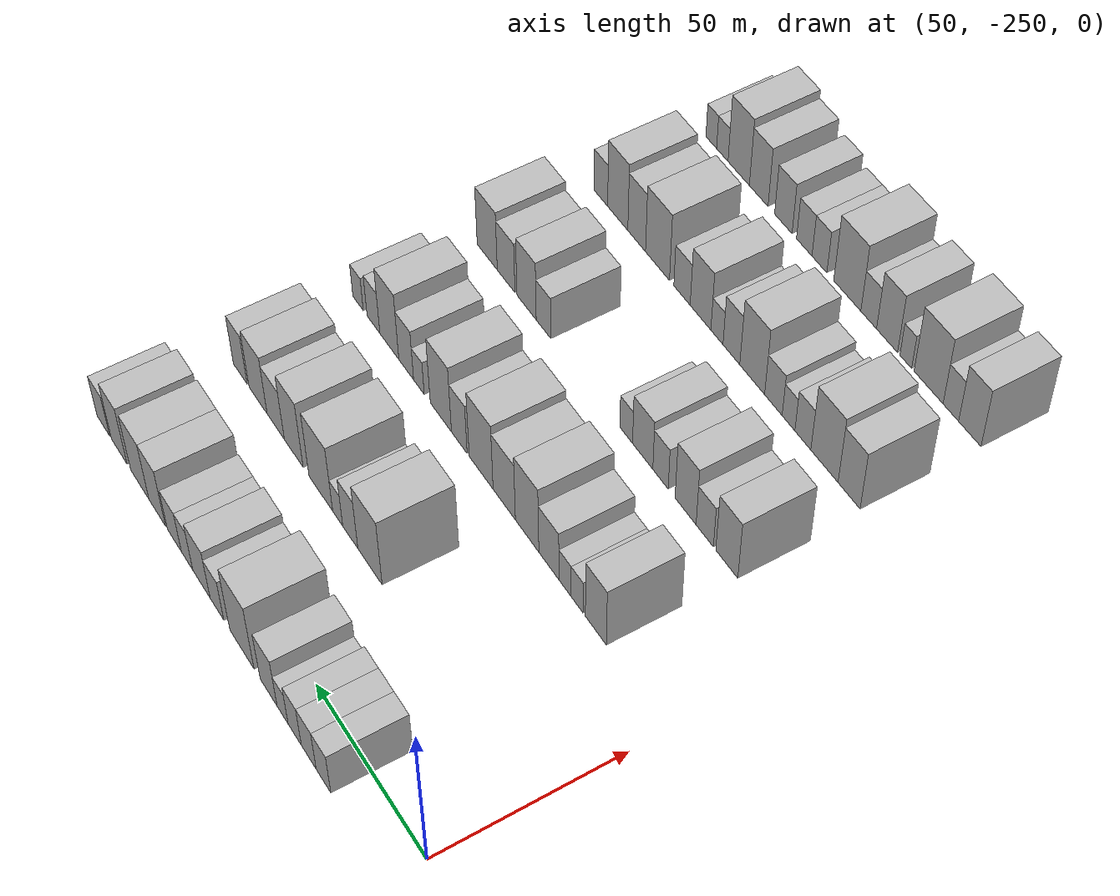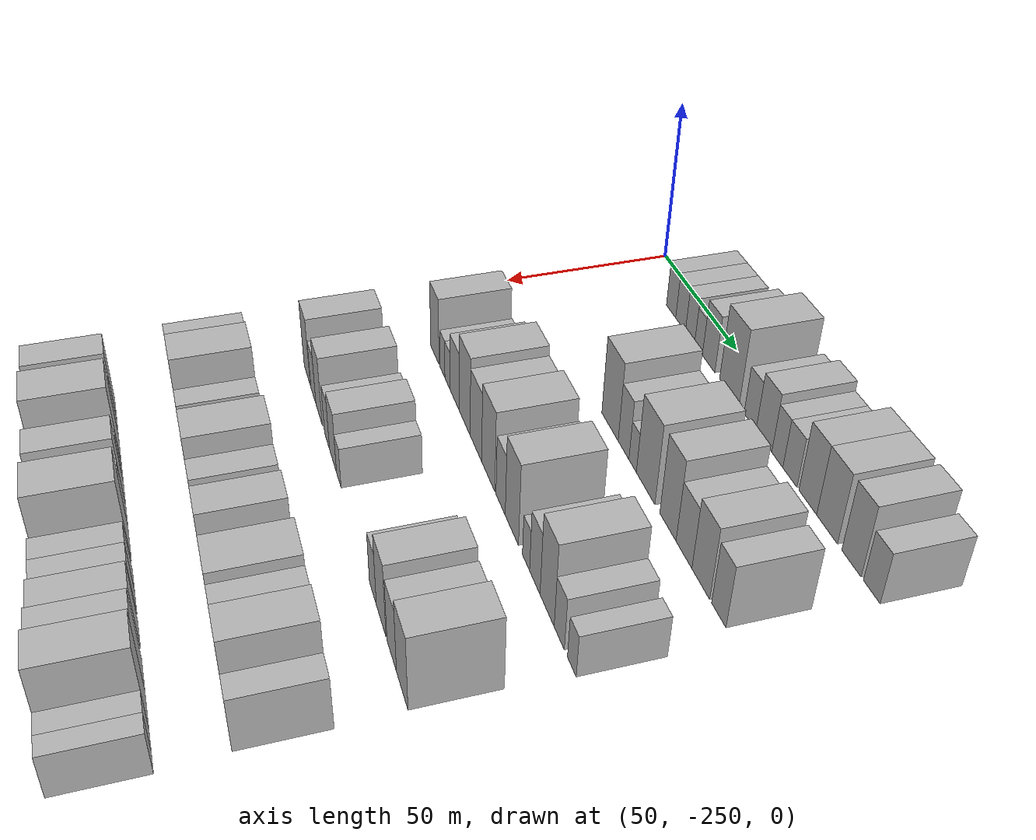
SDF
<sdf version="1.6">
 <world name="default">
  <model name="building_37">
   <static>1</static>
   <pose>50.0000 -222.2057 0 0.000000 0.000000 0.000000</pose>
   <link name="link">
    <pose>0 0 7.50 0 0 0</pose>
    <collision name="collision"><geometry><box><size>20.0000 6.7397 15.0000</size></box></geometry></collision>
    <visual name="visual">
     <cast_shadows>0</cast_shadows>
     <geometry><box><size>20.0000 6.7397 15.0000</size></box></geometry>
     <material>
      <script>
       <uri>model://HANNAS_wall/materials/scripts</uri>
       <uri>model://HANNAS_wall/materials/textures</uri>
       <name>vrc/HANNAS_wall</name>
      </script>
     </material>
    </visual>
   </link>
  </model>
  <model name="building_38">
   <static>1</static>
   <pose>50.0000 -215.3865 0 0.000000 0.000000 0.000000</pose>
   <link name="link">
    <pose>0 0 7.50 0 0 0</pose>
    <collision name="collision"><geometry><box><size>20.0000 6.8987 15.0000</size></box></geometry></collision>
    <visual name="visual">
     <cast_shadows>0</cast_shadows>
     <geometry><box><size>20.0000 6.8987 15.0000</size></box></geometry>
     <material>
      <script>
       <uri>model://HANNAS_wall/materials/scripts</uri>
       <uri>model://HANNAS_wall/materials/textures</uri>
       <name>vrc/HANNAS_wall</name>
      </script>
     </material>
    </visual>
   </link>
  </model>
  <model name="building_39">
   <static>1</static>
   <pose>50.0000 -208.8078 0 0.000000 0.000000 0.000000</pose>
   <link name="link">
    <pose>0 0 7.50 0 0 0</pose>
    <collision name="collision"><geometry><box><size>20.0000 6.2588 15.0000</size></box></geometry></collision>
    <visual name="visual">
     <cast_shadows>0</cast_shadows>
     <geometry><box><size>20.0000 6.2588 15.0000</size></box></geometry>
     <material>
      <script>
       <uri>model://HANNAS_wall/materials/scripts</uri>
       <uri>model://HANNAS_wall/materials/textures</uri>
       <name>vrc/HANNAS_wall</name>
      </script>
     </material>
    </visual>
   </link>
  </model>
  <model name="building_40">
   <static>1</static>
   <pose>50.0000 -203.0343 0 0.000000 0.000000 0.000000</pose>
   <link name="link">
    <pose>0 0 6.00 0 0 0</pose>
    <collision name="collision"><geometry><box><size>20.0000 5.2880 12.0000</size></box></geometry></collision>
    <visual name="visual">
     <cast_shadows>0</cast_shadows>
     <geometry><box><size>20.0000 5.2880 12.0000</size></box></geometry>
     <material>
      <script>
       <uri>model://HANNAS_wall/materials/scripts</uri>
       <uri>model://HANNAS_wall/materials/textures</uri>
       <name>vrc/HANNAS_wall</name>
      </script>
     </material>
    </visual>
   </link>
  </model>
  <model name="building_41">
   <static>1</static>
   <pose>50.0000 -196.2881 0 0.000000 0.000000 0.000000</pose>
   <link name="link">
    <pose>0 0 9.00 0 0 0</pose>
    <collision name="collision"><geometry><box><size>20.0000 8.2043 18.0000</size></box></geometry></collision>
    <visual name="visual">
     <cast_shadows>0</cast_shadows>
     <geometry><box><size>20.0000 8.2043 18.0000</size></box></geometry>
     <material>
      <script>
       <uri>model://HANNAS_wall/materials/scripts</uri>
       <uri>model://HANNAS_wall/materials/textures</uri>
       <name>vrc/HANNAS_wall</name>
      </script>
     </material>
    </visual>
   </link>
  </model>
  <model name="building_42">
   <static>1</static>
   <pose>50.0000 -183.1892 0 0.000000 0.000000 0.000000</pose>
   <link name="link">
    <pose>0 0 12.00 0 0 0</pose>
    <collision name="collision"><geometry><box><size>20.0000 11.9935 24.0000</size></box></geometry></collision>
    <visual name="visual">
     <cast_shadows>0</cast_shadows>
     <geometry><box><size>20.0000 11.9935 24.0000</size></box></geometry>
     <material>
      <script>
       <uri>model://HANNAS_wall/materials/scripts</uri>
       <uri>model://HANNAS_wall/materials/textures</uri>
       <name>vrc/HANNAS_wall</name>
      </script>
     </material>
    </visual>
   </link>
  </model>
  <model name="building_43">
   <static>1</static>
   <pose>50.0000 -170.7043 0 0.000000 0.000000 0.000000</pose>
   <link name="link">
    <pose>0 0 7.50 0 0 0</pose>
    <collision name="collision"><geometry><box><size>20.0000 6.9764 15.0000</size></box></geometry></collision>
    <visual name="visual">
     <cast_shadows>0</cast_shadows>
     <geometry><box><size>20.0000 6.9764 15.0000</size></box></geometry>
     <material>
      <script>
       <uri>model://HANNAS_wall/materials/scripts</uri>
       <uri>model://HANNAS_wall/materials/textures</uri>
       <name>vrc/HANNAS_wall</name>
      </script>
     </material>
    </visual>
   </link>
  </model>
  <model name="building_44">
   <static>1</static>
   <pose>50.0000 -162.7735 0 0.000000 0.000000 0.000000</pose>
   <link name="link">
    <pose>0 0 9.00 0 0 0</pose>
    <collision name="collision"><geometry><box><size>20.0000 8.8852 18.0000</size></box></geometry></collision>
    <visual name="visual">
     <cast_shadows>0</cast_shadows>
     <geometry><box><size>20.0000 8.8852 18.0000</size></box></geometry>
     <material>
      <script>
       <uri>model://HANNAS_wall/materials/scripts</uri>
       <uri>model://HANNAS_wall/materials/textures</uri>
       <name>vrc/HANNAS_wall</name>
      </script>
     </material>
    </visual>
   </link>
  </model>
  <model name="building_45">
   <static>1</static>
   <pose>50.0000 -155.3283 0 0.000000 0.000000 0.000000</pose>
   <link name="link">
    <pose>0 0 7.50 0 0 0</pose>
    <collision name="collision"><geometry><box><size>20.0000 6.0052 15.0000</size></box></geometry></collision>
    <visual name="visual">
     <cast_shadows>0</cast_shadows>
     <geometry><box><size>20.0000 6.0052 15.0000</size></box></geometry>
     <material>
      <script>
       <uri>model://HANNAS_wall/materials/scripts</uri>
       <uri>model://HANNAS_wall/materials/textures</uri>
       <name>vrc/HANNAS_wall</name>
      </script>
     </material>
    </visual>
   </link>
  </model>
  <model name="building_46">
   <static>1</static>
   <pose>50.0000 -148.6148 0 0.000000 0.000000 0.000000</pose>
   <link name="link">
    <pose>0 0 7.50 0 0 0</pose>
    <collision name="collision"><geometry><box><size>20.0000 7.4218 15.0000</size></box></geometry></collision>
    <visual name="visual">
     <cast_shadows>0</cast_shadows>
     <geometry><box><size>20.0000 7.4218 15.0000</size></box></geometry>
     <material>
      <script>
       <uri>model://HANNAS_wall/materials/scripts</uri>
       <uri>model://HANNAS_wall/materials/textures</uri>
       <name>vrc/HANNAS_wall</name>
      </script>
     </material>
    </visual>
   </link>
  </model>
  <model name="building_47">
   <static>1</static>
   <pose>50.0000 -139.4561 0 0.000000 0.000000 0.000000</pose>
   <link name="link">
    <pose>0 0 10.50 0 0 0</pose>
    <collision name="collision"><geometry><box><size>20.0000 8.8955 21.0000</size></box></geometry></collision>
    <visual name="visual">
     <cast_shadows>0</cast_shadows>
     <geometry><box><size>20.0000 8.8955 21.0000</size></box></geometry>
     <material>
      <script>
       <uri>model://HANNAS_wall/materials/scripts</uri>
       <uri>model://HANNAS_wall/materials/textures</uri>
       <name>vrc/HANNAS_wall</name>
      </script>
     </material>
    </visual>
   </link>
  </model>
  <model name="building_48">
   <static>1</static>
   <pose>50.0000 -130.0161 0 0.000000 0.000000 0.000000</pose>
   <link name="link">
    <pose>0 0 10.50 0 0 0</pose>
    <collision name="collision"><geometry><box><size>20.0000 9.9846 21.0000</size></box></geometry></collision>
    <visual name="visual">
     <cast_shadows>0</cast_shadows>
     <geometry><box><size>20.0000 9.9846 21.0000</size></box></geometry>
     <material>
      <script>
       <uri>model://HANNAS_wall/materials/scripts</uri>
       <uri>model://HANNAS_wall/materials/textures</uri>
       <name>vrc/HANNAS_wall</name>
      </script>
     </material>
    </visual>
   </link>
  </model>
  <model name="building_49">
   <static>1</static>
   <pose>50.0000 -118.6606 0 0.000000 0.000000 0.000000</pose>
   <link name="link">
    <pose>0 0 10.50 0 0 0</pose>
    <collision name="collision"><geometry><box><size>20.0000 8.7264 21.0000</size></box></geometry></collision>
    <visual name="visual">
     <cast_shadows>0</cast_shadows>
     <geometry><box><size>20.0000 8.7264 21.0000</size></box></geometry>
     <material>
      <script>
       <uri>model://HANNAS_wall/materials/scripts</uri>
       <uri>model://HANNAS_wall/materials/textures</uri>
       <name>vrc/HANNAS_wall</name>
      </script>
     </material>
    </visual>
   </link>
  </model>
  <model name="building_50">
   <static>1</static>
   <pose>50.0000 -109.6821 0 0.000000 0.000000 0.000000</pose>
   <link name="link">
    <pose>0 0 7.50 0 0 0</pose>
    <collision name="collision"><geometry><box><size>20.0000 7.2307 15.0000</size></box></geometry></collision>
    <visual name="visual">
     <cast_shadows>0</cast_shadows>
     <geometry><box><size>20.0000 7.2307 15.0000</size></box></geometry>
     <material>
      <script>
       <uri>model://HANNAS_wall/materials/scripts</uri>
       <uri>model://HANNAS_wall/materials/textures</uri>
       <name>vrc/HANNAS_wall</name>
      </script>
     </material>
    </visual>
   </link>
  </model>
  <model name="building_161">
   <static>1</static>
   <pose>85.0000 -178.3140 0 0.000000 0.000000 0.000000</pose>
   <link name="link">
    <pose>0 0 12.00 0 0 0</pose>
    <collision name="collision"><geometry><box><size>20.0000 11.6469 24.0000</size></box></geometry></collision>
    <visual name="visual">
     <cast_shadows>0</cast_shadows>
     <geometry><box><size>20.0000 11.6469 24.0000</size></box></geometry>
     <material>
      <script>
       <uri>model://HANNAS_wall/materials/scripts</uri>
       <uri>model://HANNAS_wall/materials/textures</uri>
       <name>vrc/HANNAS_wall</name>
      </script>
     </material>
    </visual>
   </link>
  </model>
  <model name="building_162">
   <static>1</static>
   <pose>85.0000 -168.8103 0 0.000000 0.000000 0.000000</pose>
   <link name="link">
    <pose>0 0 9.00 0 0 0</pose>
    <collision name="collision"><geometry><box><size>20.0000 7.3607 18.0000</size></box></geometry></collision>
    <visual name="visual">
     <cast_shadows>0</cast_shadows>
     <geometry><box><size>20.0000 7.3607 18.0000</size></box></geometry>
     <material>
      <script>
       <uri>model://HANNAS_wall/materials/scripts</uri>
       <uri>model://HANNAS_wall/materials/textures</uri>
       <name>vrc/HANNAS_wall</name>
      </script>
     </material>
    </visual>
   </link>
  </model>
  <model name="building_163">
   <static>1</static>
   <pose>85.0000 -162.6488 0 0.000000 0.000000 0.000000</pose>
   <link name="link">
    <pose>0 0 6.00 0 0 0</pose>
    <collision name="collision"><geometry><box><size>20.0000 4.9623 12.0000</size></box></geometry></collision>
    <visual name="visual">
     <cast_shadows>0</cast_shadows>
     <geometry><box><size>20.0000 4.9623 12.0000</size></box></geometry>
     <material>
      <script>
       <uri>model://HANNAS_wall/materials/scripts</uri>
       <uri>model://HANNAS_wall/materials/textures</uri>
       <name>vrc/HANNAS_wall</name>
      </script>
     </material>
    </visual>
   </link>
  </model>
  <model name="building_164">
   <static>1</static>
   <pose>85.0000 -154.2347 0 0.000000 0.000000 0.000000</pose>
   <link name="link">
    <pose>0 0 12.00 0 0 0</pose>
    <collision name="collision"><geometry><box><size>20.0000 11.8658 24.0000</size></box></geometry></collision>
    <visual name="visual">
     <cast_shadows>0</cast_shadows>
     <geometry><box><size>20.0000 11.8658 24.0000</size></box></geometry>
     <material>
      <script>
       <uri>model://HANNAS_wall/materials/scripts</uri>
       <uri>model://HANNAS_wall/materials/textures</uri>
       <name>vrc/HANNAS_wall</name>
      </script>
     </material>
    </visual>
   </link>
  </model>
  <model name="building_165">
   <static>1</static>
   <pose>85.0000 -140.4770 0 0.000000 0.000000 0.000000</pose>
   <link name="link">
    <pose>0 0 12.00 0 0 0</pose>
    <collision name="collision"><geometry><box><size>20.0000 9.6497 24.0000</size></box></geometry></collision>
    <visual name="visual">
     <cast_shadows>0</cast_shadows>
     <geometry><box><size>20.0000 9.6497 24.0000</size></box></geometry>
     <material>
      <script>
       <uri>model://HANNAS_wall/materials/scripts</uri>
       <uri>model://HANNAS_wall/materials/textures</uri>
       <name>vrc/HANNAS_wall</name>
      </script>
     </material>
    </visual>
   </link>
  </model>
  <model name="building_166">
   <static>1</static>
   <pose>85.0000 -131.1548 0 0.000000 0.000000 0.000000</pose>
   <link name="link">
    <pose>0 0 9.00 0 0 0</pose>
    <collision name="collision"><geometry><box><size>20.0000 8.9945 18.0000</size></box></geometry></collision>
    <visual name="visual">
     <cast_shadows>0</cast_shadows>
     <geometry><box><size>20.0000 8.9945 18.0000</size></box></geometry>
     <material>
      <script>
       <uri>model://HANNAS_wall/materials/scripts</uri>
       <uri>model://HANNAS_wall/materials/textures</uri>
       <name>vrc/HANNAS_wall</name>
      </script>
     </material>
    </visual>
   </link>
  </model>
  <model name="building_167">
   <static>1</static>
   <pose>85.0000 -121.8473 0 0.000000 0.000000 0.000000</pose>
   <link name="link">
    <pose>0 0 10.50 0 0 0</pose>
    <collision name="collision"><geometry><box><size>20.0000 9.6205 21.0000</size></box></geometry></collision>
    <visual name="visual">
     <cast_shadows>0</cast_shadows>
     <geometry><box><size>20.0000 9.6205 21.0000</size></box></geometry>
     <material>
      <script>
       <uri>model://HANNAS_wall/materials/scripts</uri>
       <uri>model://HANNAS_wall/materials/textures</uri>
       <name>vrc/HANNAS_wall</name>
      </script>
     </material>
    </visual>
   </link>
  </model>
  <model name="building_168">
   <static>1</static>
   <pose>85.0000 -112.3447 0 0.000000 0.000000 0.000000</pose>
   <link name="link">
    <pose>0 0 9.00 0 0 0</pose>
    <collision name="collision"><geometry><box><size>20.0000 7.3847 18.0000</size></box></geometry></collision>
    <visual name="visual">
     <cast_shadows>0</cast_shadows>
     <geometry><box><size>20.0000 7.3847 18.0000</size></box></geometry>
     <material>
      <script>
       <uri>model://HANNAS_wall/materials/scripts</uri>
       <uri>model://HANNAS_wall/materials/textures</uri>
       <name>vrc/HANNAS_wall</name>
      </script>
     </material>
    </visual>
   </link>
  </model>
  <model name="building_282">
   <static>1</static>
   <pose>120.0000 -219.7850 0 0.000000 0.000000 0.000000</pose>
   <link name="link">
    <pose>0 0 10.50 0 0 0</pose>
    <collision name="collision"><geometry><box><size>20.0000 8.9713 21.0000</size></box></geometry></collision>
    <visual name="visual">
     <cast_shadows>0</cast_shadows>
     <geometry><box><size>20.0000 8.9713 21.0000</size></box></geometry>
     <material>
      <script>
       <uri>model://HANNAS_wall/materials/scripts</uri>
       <uri>model://HANNAS_wall/materials/textures</uri>
       <name>vrc/HANNAS_wall</name>
      </script>
     </material>
    </visual>
   </link>
  </model>
  <model name="building_283">
   <static>1</static>
   <pose>120.0000 -211.7046 0 0.000000 0.000000 0.000000</pose>
   <link name="link">
    <pose>0 0 6.00 0 0 0</pose>
    <collision name="collision"><geometry><box><size>20.0000 5.1895 12.0000</size></box></geometry></collision>
    <visual name="visual">
     <cast_shadows>0</cast_shadows>
     <geometry><box><size>20.0000 5.1895 12.0000</size></box></geometry>
     <material>
      <script>
       <uri>model://HANNAS_wall/materials/scripts</uri>
       <uri>model://HANNAS_wall/materials/textures</uri>
       <name>vrc/HANNAS_wall</name>
      </script>
     </material>
    </visual>
   </link>
  </model>
  <model name="building_284">
   <static>1</static>
   <pose>120.0000 -206.4529 0 0.000000 0.000000 0.000000</pose>
   <link name="link">
    <pose>0 0 6.00 0 0 0</pose>
    <collision name="collision"><geometry><box><size>20.0000 5.3138 12.0000</size></box></geometry></collision>
    <visual name="visual">
     <cast_shadows>0</cast_shadows>
     <geometry><box><size>20.0000 5.3138 12.0000</size></box></geometry>
     <material>
      <script>
       <uri>model://HANNAS_wall/materials/scripts</uri>
       <uri>model://HANNAS_wall/materials/textures</uri>
       <name>vrc/HANNAS_wall</name>
      </script>
     </material>
    </visual>
   </link>
  </model>
  <model name="building_285">
   <static>1</static>
   <pose>120.0000 -199.3241 0 0.000000 0.000000 0.000000</pose>
   <link name="link">
    <pose>0 0 9.00 0 0 0</pose>
    <collision name="collision"><geometry><box><size>20.0000 8.9437 18.0000</size></box></geometry></collision>
    <visual name="visual">
     <cast_shadows>0</cast_shadows>
     <geometry><box><size>20.0000 8.9437 18.0000</size></box></geometry>
     <material>
      <script>
       <uri>model://HANNAS_wall/materials/scripts</uri>
       <uri>model://HANNAS_wall/materials/textures</uri>
       <name>vrc/HANNAS_wall</name>
      </script>
     </material>
    </visual>
   </link>
  </model>
  <model name="building_286">
   <static>1</static>
   <pose>120.0000 -189.5425 0 0.000000 0.000000 0.000000</pose>
   <link name="link">
    <pose>0 0 12.00 0 0 0</pose>
    <collision name="collision"><geometry><box><size>20.0000 10.6196 24.0000</size></box></geometry></collision>
    <visual name="visual">
     <cast_shadows>0</cast_shadows>
     <geometry><box><size>20.0000 10.6196 24.0000</size></box></geometry>
     <material>
      <script>
       <uri>model://HANNAS_wall/materials/scripts</uri>
       <uri>model://HANNAS_wall/materials/textures</uri>
       <name>vrc/HANNAS_wall</name>
      </script>
     </material>
    </visual>
   </link>
  </model>
  <model name="building_287">
   <static>1</static>
   <pose>120.0000 -179.0913 0 0.000000 0.000000 0.000000</pose>
   <link name="link">
    <pose>0 0 10.50 0 0 0</pose>
    <collision name="collision"><geometry><box><size>20.0000 10.2829 21.0000</size></box></geometry></collision>
    <visual name="visual">
     <cast_shadows>0</cast_shadows>
     <geometry><box><size>20.0000 10.2829 21.0000</size></box></geometry>
     <material>
      <script>
       <uri>model://HANNAS_wall/materials/scripts</uri>
       <uri>model://HANNAS_wall/materials/textures</uri>
       <name>vrc/HANNAS_wall</name>
      </script>
     </material>
    </visual>
   </link>
  </model>
  <model name="building_288">
   <static>1</static>
   <pose>120.0000 -168.3339 0 0.000000 0.000000 0.000000</pose>
   <link name="link">
    <pose>0 0 12.00 0 0 0</pose>
    <collision name="collision"><geometry><box><size>20.0000 11.2319 24.0000</size></box></geometry></collision>
    <visual name="visual">
     <cast_shadows>0</cast_shadows>
     <geometry><box><size>20.0000 11.2319 24.0000</size></box></geometry>
     <material>
      <script>
       <uri>model://HANNAS_wall/materials/scripts</uri>
       <uri>model://HANNAS_wall/materials/textures</uri>
       <name>vrc/HANNAS_wall</name>
      </script>
     </material>
    </visual>
   </link>
  </model>
  <model name="building_289">
   <static>1</static>
   <pose>120.0000 -157.9696 0 0.000000 0.000000 0.000000</pose>
   <link name="link">
    <pose>0 0 9.00 0 0 0</pose>
    <collision name="collision"><geometry><box><size>20.0000 7.4966 18.0000</size></box></geometry></collision>
    <visual name="visual">
     <cast_shadows>0</cast_shadows>
     <geometry><box><size>20.0000 7.4966 18.0000</size></box></geometry>
     <material>
      <script>
       <uri>model://HANNAS_wall/materials/scripts</uri>
       <uri>model://HANNAS_wall/materials/textures</uri>
       <name>vrc/HANNAS_wall</name>
      </script>
     </material>
    </visual>
   </link>
  </model>
  <model name="building_290">
   <static>1</static>
   <pose>120.0000 -149.0648 0 0.000000 0.000000 0.000000</pose>
   <link name="link">
    <pose>0 0 12.00 0 0 0</pose>
    <collision name="collision"><geometry><box><size>20.0000 10.3130 24.0000</size></box></geometry></collision>
    <visual name="visual">
     <cast_shadows>0</cast_shadows>
     <geometry><box><size>20.0000 10.3130 24.0000</size></box></geometry>
     <material>
      <script>
       <uri>model://HANNAS_wall/materials/scripts</uri>
       <uri>model://HANNAS_wall/materials/textures</uri>
       <name>vrc/HANNAS_wall</name>
      </script>
     </material>
    </visual>
   </link>
  </model>
  <model name="building_291">
   <static>1</static>
   <pose>120.0000 -138.2859 0 0.000000 0.000000 0.000000</pose>
   <link name="link">
    <pose>0 0 6.00 0 0 0</pose>
    <collision name="collision"><geometry><box><size>20.0000 5.2447 12.0000</size></box></geometry></collision>
    <visual name="visual">
     <cast_shadows>0</cast_shadows>
     <geometry><box><size>20.0000 5.2447 12.0000</size></box></geometry>
     <material>
      <script>
       <uri>model://HANNAS_wall/materials/scripts</uri>
       <uri>model://HANNAS_wall/materials/textures</uri>
       <name>vrc/HANNAS_wall</name>
      </script>
     </material>
    </visual>
   </link>
  </model>
  <model name="building_292">
   <static>1</static>
   <pose>120.0000 -131.9553 0 0.000000 0.000000 0.000000</pose>
   <link name="link">
    <pose>0 0 9.00 0 0 0</pose>
    <collision name="collision"><geometry><box><size>20.0000 7.4166 18.0000</size></box></geometry></collision>
    <visual name="visual">
     <cast_shadows>0</cast_shadows>
     <geometry><box><size>20.0000 7.4166 18.0000</size></box></geometry>
     <material>
      <script>
       <uri>model://HANNAS_wall/materials/scripts</uri>
       <uri>model://HANNAS_wall/materials/textures</uri>
       <name>vrc/HANNAS_wall</name>
      </script>
     </material>
    </visual>
   </link>
  </model>
  <model name="building_293">
   <static>1</static>
   <pose>120.0000 -123.4278 0 0.000000 0.000000 0.000000</pose>
   <link name="link">
    <pose>0 0 12.00 0 0 0</pose>
    <collision name="collision"><geometry><box><size>20.0000 9.6383 24.0000</size></box></geometry></collision>
    <visual name="visual">
     <cast_shadows>0</cast_shadows>
     <geometry><box><size>20.0000 9.6383 24.0000</size></box></geometry>
     <material>
      <script>
       <uri>model://HANNAS_wall/materials/scripts</uri>
       <uri>model://HANNAS_wall/materials/textures</uri>
       <name>vrc/HANNAS_wall</name>
      </script>
     </material>
    </visual>
   </link>
  </model>
  <model name="building_294">
   <static>1</static>
   <pose>120.0000 -115.3093 0 0.000000 0.000000 0.000000</pose>
   <link name="link">
    <pose>0 0 7.50 0 0 0</pose>
    <collision name="collision"><geometry><box><size>20.0000 6.5988 15.0000</size></box></geometry></collision>
    <visual name="visual">
     <cast_shadows>0</cast_shadows>
     <geometry><box><size>20.0000 6.5988 15.0000</size></box></geometry>
     <material>
      <script>
       <uri>model://HANNAS_wall/materials/scripts</uri>
       <uri>model://HANNAS_wall/materials/textures</uri>
       <name>vrc/HANNAS_wall</name>
      </script>
     </material>
    </visual>
   </link>
  </model>
  <model name="building_295">
   <static>1</static>
   <pose>120.0000 -107.3004 0 0.000000 0.000000 0.000000</pose>
   <link name="link">
    <pose>0 0 6.00 0 0 0</pose>
    <collision name="collision"><geometry><box><size>20.0000 5.4190 12.0000</size></box></geometry></collision>
    <visual name="visual">
     <cast_shadows>0</cast_shadows>
     <geometry><box><size>20.0000 5.4190 12.0000</size></box></geometry>
     <material>
      <script>
       <uri>model://HANNAS_wall/materials/scripts</uri>
       <uri>model://HANNAS_wall/materials/textures</uri>
       <name>vrc/HANNAS_wall</name>
      </script>
     </material>
    </visual>
   </link>
  </model>
  <model name="building_410">
   <static>1</static>
   <pose>155.0000 -219.9054 0 0.000000 0.000000 0.000000</pose>
   <link name="link">
    <pose>0 0 10.50 0 0 0</pose>
    <collision name="collision"><geometry><box><size>20.0000 9.1287 21.0000</size></box></geometry></collision>
    <visual name="visual">
     <cast_shadows>0</cast_shadows>
     <geometry><box><size>20.0000 9.1287 21.0000</size></box></geometry>
     <material>
      <script>
       <uri>model://HANNAS_wall/materials/scripts</uri>
       <uri>model://HANNAS_wall/materials/textures</uri>
       <name>vrc/HANNAS_wall</name>
      </script>
     </material>
    </visual>
   </link>
  </model>
  <model name="building_411">
   <static>1</static>
   <pose>155.0000 -210.6933 0 0.000000 0.000000 0.000000</pose>
   <link name="link">
    <pose>0 0 7.50 0 0 0</pose>
    <collision name="collision"><geometry><box><size>20.0000 7.2954 15.0000</size></box></geometry></collision>
    <visual name="visual">
     <cast_shadows>0</cast_shadows>
     <geometry><box><size>20.0000 7.2954 15.0000</size></box></geometry>
     <material>
      <script>
       <uri>model://HANNAS_wall/materials/scripts</uri>
       <uri>model://HANNAS_wall/materials/textures</uri>
       <name>vrc/HANNAS_wall</name>
      </script>
     </material>
    </visual>
   </link>
  </model>
  <model name="building_412">
   <static>1</static>
   <pose>155.0000 -202.5580 0 0.000000 0.000000 0.000000</pose>
   <link name="link">
    <pose>0 0 10.50 0 0 0</pose>
    <collision name="collision"><geometry><box><size>20.0000 8.9752 21.0000</size></box></geometry></collision>
    <visual name="visual">
     <cast_shadows>0</cast_shadows>
     <geometry><box><size>20.0000 8.9752 21.0000</size></box></geometry>
     <material>
      <script>
       <uri>model://HANNAS_wall/materials/scripts</uri>
       <uri>model://HANNAS_wall/materials/textures</uri>
       <name>vrc/HANNAS_wall</name>
      </script>
     </material>
    </visual>
   </link>
  </model>
  <model name="building_413">
   <static>1</static>
   <pose>155.0000 -191.7249 0 0.000000 0.000000 0.000000</pose>
   <link name="link">
    <pose>0 0 7.50 0 0 0</pose>
    <collision name="collision"><geometry><box><size>20.0000 6.6911 15.0000</size></box></geometry></collision>
    <visual name="visual">
     <cast_shadows>0</cast_shadows>
     <geometry><box><size>20.0000 6.6911 15.0000</size></box></geometry>
     <material>
      <script>
       <uri>model://HANNAS_wall/materials/scripts</uri>
       <uri>model://HANNAS_wall/materials/textures</uri>
       <name>vrc/HANNAS_wall</name>
      </script>
     </material>
    </visual>
   </link>
  </model>
  <model name="building_414">
   <static>1</static>
   <pose>155.0000 -183.8926 0 0.000000 0.000000 0.000000</pose>
   <link name="link">
    <pose>0 0 9.00 0 0 0</pose>
    <collision name="collision"><geometry><box><size>20.0000 8.9734 18.0000</size></box></geometry></collision>
    <visual name="visual">
     <cast_shadows>0</cast_shadows>
     <geometry><box><size>20.0000 8.9734 18.0000</size></box></geometry>
     <material>
      <script>
       <uri>model://HANNAS_wall/materials/scripts</uri>
       <uri>model://HANNAS_wall/materials/textures</uri>
       <name>vrc/HANNAS_wall</name>
      </script>
     </material>
    </visual>
   </link>
  </model>
  <model name="building_415">
   <static>1</static>
   <pose>155.0000 -176.5642 0 0.000000 0.000000 0.000000</pose>
   <link name="link">
    <pose>0 0 6.00 0 0 0</pose>
    <collision name="collision"><geometry><box><size>20.0000 5.6836 12.0000</size></box></geometry></collision>
    <visual name="visual">
     <cast_shadows>0</cast_shadows>
     <geometry><box><size>20.0000 5.6836 12.0000</size></box></geometry>
     <material>
      <script>
       <uri>model://HANNAS_wall/materials/scripts</uri>
       <uri>model://HANNAS_wall/materials/textures</uri>
       <name>vrc/HANNAS_wall</name>
      </script>
     </material>
    </visual>
   </link>
  </model>
  <model name="building_416">
   <static>1</static>
   <pose>155.0000 -138.2287 0 0.000000 0.000000 0.000000</pose>
   <link name="link">
    <pose>0 0 7.50 0 0 0</pose>
    <collision name="collision"><geometry><box><size>20.0000 6.9958 15.0000</size></box></geometry></collision>
    <visual name="visual">
     <cast_shadows>0</cast_shadows>
     <geometry><box><size>20.0000 6.9958 15.0000</size></box></geometry>
     <material>
      <script>
       <uri>model://HANNAS_wall/materials/scripts</uri>
       <uri>model://HANNAS_wall/materials/textures</uri>
       <name>vrc/HANNAS_wall</name>
      </script>
     </material>
    </visual>
   </link>
  </model>
  <model name="building_417">
   <static>1</static>
   <pose>155.0000 -130.0540 0 0.000000 0.000000 0.000000</pose>
   <link name="link">
    <pose>0 0 10.50 0 0 0</pose>
    <collision name="collision"><geometry><box><size>20.0000 9.3537 21.0000</size></box></geometry></collision>
    <visual name="visual">
     <cast_shadows>0</cast_shadows>
     <geometry><box><size>20.0000 9.3537 21.0000</size></box></geometry>
     <material>
      <script>
       <uri>model://HANNAS_wall/materials/scripts</uri>
       <uri>model://HANNAS_wall/materials/textures</uri>
       <name>vrc/HANNAS_wall</name>
      </script>
     </material>
    </visual>
   </link>
  </model>
  <model name="building_418">
   <static>1</static>
   <pose>155.0000 -120.0063 0 0.000000 0.000000 0.000000</pose>
   <link name="link">
    <pose>0 0 9.00 0 0 0</pose>
    <collision name="collision"><geometry><box><size>20.0000 8.7416 18.0000</size></box></geometry></collision>
    <visual name="visual">
     <cast_shadows>0</cast_shadows>
     <geometry><box><size>20.0000 8.7416 18.0000</size></box></geometry>
     <material>
      <script>
       <uri>model://HANNAS_wall/materials/scripts</uri>
       <uri>model://HANNAS_wall/materials/textures</uri>
       <name>vrc/HANNAS_wall</name>
      </script>
     </material>
    </visual>
   </link>
  </model>
  <model name="building_419">
   <static>1</static>
   <pose>155.0000 -110.5997 0 0.000000 0.000000 0.000000</pose>
   <link name="link">
    <pose>0 0 10.50 0 0 0</pose>
    <collision name="collision"><geometry><box><size>20.0000 10.0716 21.0000</size></box></geometry></collision>
    <visual name="visual">
     <cast_shadows>0</cast_shadows>
     <geometry><box><size>20.0000 10.0716 21.0000</size></box></geometry>
     <material>
      <script>
       <uri>model://HANNAS_wall/materials/scripts</uri>
       <uri>model://HANNAS_wall/materials/textures</uri>
       <name>vrc/HANNAS_wall</name>
      </script>
     </material>
    </visual>
   </link>
  </model>
  <model name="building_538">
   <static>1</static>
   <pose>190.0000 -218.5756 0 0.000000 0.000000 0.000000</pose>
   <link name="link">
    <pose>0 0 10.50 0 0 0</pose>
    <collision name="collision"><geometry><box><size>20.0000 8.9084 21.0000</size></box></geometry></collision>
    <visual name="visual">
     <cast_shadows>0</cast_shadows>
     <geometry><box><size>20.0000 8.9084 21.0000</size></box></geometry>
     <material>
      <script>
       <uri>model://HANNAS_wall/materials/scripts</uri>
       <uri>model://HANNAS_wall/materials/textures</uri>
       <name>vrc/HANNAS_wall</name>
      </script>
     </material>
    </visual>
   </link>
  </model>
  <model name="building_539">
   <static>1</static>
   <pose>190.0000 -208.5219 0 0.000000 0.000000 0.000000</pose>
   <link name="link">
    <pose>0 0 12.00 0 0 0</pose>
    <collision name="collision"><geometry><box><size>20.0000 11.1989 24.0000</size></box></geometry></collision>
    <visual name="visual">
     <cast_shadows>0</cast_shadows>
     <geometry><box><size>20.0000 11.1989 24.0000</size></box></geometry>
     <material>
      <script>
       <uri>model://HANNAS_wall/materials/scripts</uri>
       <uri>model://HANNAS_wall/materials/textures</uri>
       <name>vrc/HANNAS_wall</name>
      </script>
     </material>
    </visual>
   </link>
  </model>
  <model name="building_540">
   <static>1</static>
   <pose>190.0000 -199.5827 0 0.000000 0.000000 0.000000</pose>
   <link name="link">
    <pose>0 0 7.50 0 0 0</pose>
    <collision name="collision"><geometry><box><size>20.0000 6.6795 15.0000</size></box></geometry></collision>
    <visual name="visual">
     <cast_shadows>0</cast_shadows>
     <geometry><box><size>20.0000 6.6795 15.0000</size></box></geometry>
     <material>
      <script>
       <uri>model://HANNAS_wall/materials/scripts</uri>
       <uri>model://HANNAS_wall/materials/textures</uri>
       <name>vrc/HANNAS_wall</name>
      </script>
     </material>
    </visual>
   </link>
  </model>
  <model name="building_541">
   <static>1</static>
   <pose>190.0000 -193.5413 0 0.000000 0.000000 0.000000</pose>
   <link name="link">
    <pose>0 0 6.00 0 0 0</pose>
    <collision name="collision"><geometry><box><size>20.0000 5.4033 12.0000</size></box></geometry></collision>
    <visual name="visual">
     <cast_shadows>0</cast_shadows>
     <geometry><box><size>20.0000 5.4033 12.0000</size></box></geometry>
     <material>
      <script>
       <uri>model://HANNAS_wall/materials/scripts</uri>
       <uri>model://HANNAS_wall/materials/textures</uri>
       <name>vrc/HANNAS_wall</name>
      </script>
     </material>
    </visual>
   </link>
  </model>
  <model name="building_542">
   <static>1</static>
   <pose>190.0000 -187.1093 0 0.000000 0.000000 0.000000</pose>
   <link name="link">
    <pose>0 0 7.50 0 0 0</pose>
    <collision name="collision"><geometry><box><size>20.0000 7.4607 15.0000</size></box></geometry></collision>
    <visual name="visual">
     <cast_shadows>0</cast_shadows>
     <geometry><box><size>20.0000 7.4607 15.0000</size></box></geometry>
     <material>
      <script>
       <uri>model://HANNAS_wall/materials/scripts</uri>
       <uri>model://HANNAS_wall/materials/textures</uri>
       <name>vrc/HANNAS_wall</name>
      </script>
     </material>
    </visual>
   </link>
  </model>
  <model name="building_543">
   <static>1</static>
   <pose>190.0000 -177.9709 0 0.000000 0.000000 0.000000</pose>
   <link name="link">
    <pose>0 0 12.00 0 0 0</pose>
    <collision name="collision"><geometry><box><size>20.0000 10.8160 24.0000</size></box></geometry></collision>
    <visual name="visual">
     <cast_shadows>0</cast_shadows>
     <geometry><box><size>20.0000 10.8160 24.0000</size></box></geometry>
     <material>
      <script>
       <uri>model://HANNAS_wall/materials/scripts</uri>
       <uri>model://HANNAS_wall/materials/textures</uri>
       <name>vrc/HANNAS_wall</name>
      </script>
     </material>
    </visual>
   </link>
  </model>
  <model name="building_544">
   <static>1</static>
   <pose>190.0000 -168.8640 0 0.000000 0.000000 0.000000</pose>
   <link name="link">
    <pose>0 0 9.00 0 0 0</pose>
    <collision name="collision"><geometry><box><size>20.0000 7.3979 18.0000</size></box></geometry></collision>
    <visual name="visual">
     <cast_shadows>0</cast_shadows>
     <geometry><box><size>20.0000 7.3979 18.0000</size></box></geometry>
     <material>
      <script>
       <uri>model://HANNAS_wall/materials/scripts</uri>
       <uri>model://HANNAS_wall/materials/textures</uri>
       <name>vrc/HANNAS_wall</name>
      </script>
     </material>
    </visual>
   </link>
  </model>
  <model name="building_545">
   <static>1</static>
   <pose>190.0000 -162.4560 0 0.000000 0.000000 0.000000</pose>
   <link name="link">
    <pose>0 0 6.00 0 0 0</pose>
    <collision name="collision"><geometry><box><size>20.0000 5.4179 12.0000</size></box></geometry></collision>
    <visual name="visual">
     <cast_shadows>0</cast_shadows>
     <geometry><box><size>20.0000 5.4179 12.0000</size></box></geometry>
     <material>
      <script>
       <uri>model://HANNAS_wall/materials/scripts</uri>
       <uri>model://HANNAS_wall/materials/textures</uri>
       <name>vrc/HANNAS_wall</name>
      </script>
     </material>
    </visual>
   </link>
  </model>
  <model name="building_546">
   <static>1</static>
   <pose>190.0000 -155.0739 0 0.000000 0.000000 0.000000</pose>
   <link name="link">
    <pose>0 0 10.50 0 0 0</pose>
    <collision name="collision"><geometry><box><size>20.0000 9.3464 21.0000</size></box></geometry></collision>
    <visual name="visual">
     <cast_shadows>0</cast_shadows>
     <geometry><box><size>20.0000 9.3464 21.0000</size></box></geometry>
     <material>
      <script>
       <uri>model://HANNAS_wall/materials/scripts</uri>
       <uri>model://HANNAS_wall/materials/textures</uri>
       <name>vrc/HANNAS_wall</name>
      </script>
     </material>
    </visual>
   </link>
  </model>
  <model name="building_547">
   <static>1</static>
   <pose>190.0000 -146.6510 0 0.000000 0.000000 0.000000</pose>
   <link name="link">
    <pose>0 0 7.50 0 0 0</pose>
    <collision name="collision"><geometry><box><size>20.0000 7.4994 15.0000</size></box></geometry></collision>
    <visual name="visual">
     <cast_shadows>0</cast_shadows>
     <geometry><box><size>20.0000 7.4994 15.0000</size></box></geometry>
     <material>
      <script>
       <uri>model://HANNAS_wall/materials/scripts</uri>
       <uri>model://HANNAS_wall/materials/textures</uri>
       <name>vrc/HANNAS_wall</name>
      </script>
     </material>
    </visual>
   </link>
  </model>
  <model name="building_548">
   <static>1</static>
   <pose>190.0000 -135.2922 0 0.000000 0.000000 0.000000</pose>
   <link name="link">
    <pose>0 0 12.00 0 0 0</pose>
    <collision name="collision"><geometry><box><size>20.0000 11.2182 24.0000</size></box></geometry></collision>
    <visual name="visual">
     <cast_shadows>0</cast_shadows>
     <geometry><box><size>20.0000 11.2182 24.0000</size></box></geometry>
     <material>
      <script>
       <uri>model://HANNAS_wall/materials/scripts</uri>
       <uri>model://HANNAS_wall/materials/textures</uri>
       <name>vrc/HANNAS_wall</name>
      </script>
     </material>
    </visual>
   </link>
  </model>
  <model name="building_549">
   <static>1</static>
   <pose>190.0000 -125.4812 0 0.000000 0.000000 0.000000</pose>
   <link name="link">
    <pose>0 0 10.50 0 0 0</pose>
    <collision name="collision"><geometry><box><size>20.0000 8.4038 21.0000</size></box></geometry></collision>
    <visual name="visual">
     <cast_shadows>0</cast_shadows>
     <geometry><box><size>20.0000 8.4038 21.0000</size></box></geometry>
     <material>
      <script>
       <uri>model://HANNAS_wall/materials/scripts</uri>
       <uri>model://HANNAS_wall/materials/textures</uri>
       <name>vrc/HANNAS_wall</name>
      </script>
     </material>
    </visual>
   </link>
  </model>
  <model name="building_550">
   <static>1</static>
   <pose>190.0000 -116.4101 0 0.000000 0.000000 0.000000</pose>
   <link name="link">
    <pose>0 0 12.00 0 0 0</pose>
    <collision name="collision"><geometry><box><size>20.0000 9.7383 24.0000</size></box></geometry></collision>
    <visual name="visual">
     <cast_shadows>0</cast_shadows>
     <geometry><box><size>20.0000 9.7383 24.0000</size></box></geometry>
     <material>
      <script>
       <uri>model://HANNAS_wall/materials/scripts</uri>
       <uri>model://HANNAS_wall/materials/textures</uri>
       <name>vrc/HANNAS_wall</name>
      </script>
     </material>
    </visual>
   </link>
  </model>
  <model name="building_551">
   <static>1</static>
   <pose>190.0000 -108.2597 0 0.000000 0.000000 0.000000</pose>
   <link name="link">
    <pose>0 0 7.50 0 0 0</pose>
    <collision name="collision"><geometry><box><size>20.0000 6.5625 15.0000</size></box></geometry></collision>
    <visual name="visual">
     <cast_shadows>0</cast_shadows>
     <geometry><box><size>20.0000 6.5625 15.0000</size></box></geometry>
     <material>
      <script>
       <uri>model://HANNAS_wall/materials/scripts</uri>
       <uri>model://HANNAS_wall/materials/textures</uri>
       <name>vrc/HANNAS_wall</name>
      </script>
     </material>
    </visual>
   </link>
  </model>
  <model name="building_658">
   <static>1</static>
   <pose>225.0000 -218.5540 0 0.000000 0.000000 0.000000</pose>
   <link name="link">
    <pose>0 0 10.50 0 0 0</pose>
    <collision name="collision"><geometry><box><size>20.0000 8.8595 21.0000</size></box></geometry></collision>
    <visual name="visual">
     <cast_shadows>0</cast_shadows>
     <geometry><box><size>20.0000 8.8595 21.0000</size></box></geometry>
     <material>
      <script>
       <uri>model://HANNAS_wall/materials/scripts</uri>
       <uri>model://HANNAS_wall/materials/textures</uri>
       <name>vrc/HANNAS_wall</name>
      </script>
     </material>
    </visual>
   </link>
  </model>
  <model name="building_659">
   <static>1</static>
   <pose>225.0000 -211.0219 0 0.000000 0.000000 0.000000</pose>
   <link name="link">
    <pose>0 0 7.50 0 0 0</pose>
    <collision name="collision"><geometry><box><size>20.0000 6.2046 15.0000</size></box></geometry></collision>
    <visual name="visual">
     <cast_shadows>0</cast_shadows>
     <geometry><box><size>20.0000 6.2046 15.0000</size></box></geometry>
     <material>
      <script>
       <uri>model://HANNAS_wall/materials/scripts</uri>
       <uri>model://HANNAS_wall/materials/textures</uri>
       <name>vrc/HANNAS_wall</name>
      </script>
     </material>
    </visual>
   </link>
  </model>
  <model name="building_660">
   <static>1</static>
   <pose>225.0000 -202.0220 0 0.000000 0.000000 0.000000</pose>
   <link name="link">
    <pose>0 0 12.00 0 0 0</pose>
    <collision name="collision"><geometry><box><size>20.0000 11.7952 24.0000</size></box></geometry></collision>
    <visual name="visual">
     <cast_shadows>0</cast_shadows>
     <geometry><box><size>20.0000 11.7952 24.0000</size></box></geometry>
     <material>
      <script>
       <uri>model://HANNAS_wall/materials/scripts</uri>
       <uri>model://HANNAS_wall/materials/textures</uri>
       <name>vrc/HANNAS_wall</name>
      </script>
     </material>
    </visual>
   </link>
  </model>
  <model name="building_661">
   <static>1</static>
   <pose>225.0000 -192.7087 0 0.000000 0.000000 0.000000</pose>
   <link name="link">
    <pose>0 0 6.00 0 0 0</pose>
    <collision name="collision"><geometry><box><size>20.0000 4.8314 12.0000</size></box></geometry></collision>
    <visual name="visual">
     <cast_shadows>0</cast_shadows>
     <geometry><box><size>20.0000 4.8314 12.0000</size></box></geometry>
     <material>
      <script>
       <uri>model://HANNAS_wall/materials/scripts</uri>
       <uri>model://HANNAS_wall/materials/textures</uri>
       <name>vrc/HANNAS_wall</name>
      </script>
     </material>
    </visual>
   </link>
  </model>
  <model name="building_662">
   <static>1</static>
   <pose>225.0000 -184.9015 0 0.000000 0.000000 0.000000</pose>
   <link name="link">
    <pose>0 0 10.50 0 0 0</pose>
    <collision name="collision"><geometry><box><size>20.0000 8.7829 21.0000</size></box></geometry></collision>
    <visual name="visual">
     <cast_shadows>0</cast_shadows>
     <geometry><box><size>20.0000 8.7829 21.0000</size></box></geometry>
     <material>
      <script>
       <uri>model://HANNAS_wall/materials/scripts</uri>
       <uri>model://HANNAS_wall/materials/textures</uri>
       <name>vrc/HANNAS_wall</name>
      </script>
     </material>
    </visual>
   </link>
  </model>
  <model name="building_663">
   <static>1</static>
   <pose>225.0000 -177.1838 0 0.000000 0.000000 0.000000</pose>
   <link name="link">
    <pose>0 0 7.50 0 0 0</pose>
    <collision name="collision"><geometry><box><size>20.0000 6.6524 15.0000</size></box></geometry></collision>
    <visual name="visual">
     <cast_shadows>0</cast_shadows>
     <geometry><box><size>20.0000 6.6524 15.0000</size></box></geometry>
     <material>
      <script>
       <uri>model://HANNAS_wall/materials/scripts</uri>
       <uri>model://HANNAS_wall/materials/textures</uri>
       <name>vrc/HANNAS_wall</name>
      </script>
     </material>
    </visual>
   </link>
  </model>
  <model name="building_664">
   <static>1</static>
   <pose>225.0000 -168.0169 0 0.000000 0.000000 0.000000</pose>
   <link name="link">
    <pose>0 0 12.00 0 0 0</pose>
    <collision name="collision"><geometry><box><size>20.0000 11.6815 24.0000</size></box></geometry></collision>
    <visual name="visual">
     <cast_shadows>0</cast_shadows>
     <geometry><box><size>20.0000 11.6815 24.0000</size></box></geometry>
     <material>
      <script>
       <uri>model://HANNAS_wall/materials/scripts</uri>
       <uri>model://HANNAS_wall/materials/textures</uri>
       <name>vrc/HANNAS_wall</name>
      </script>
     </material>
    </visual>
   </link>
  </model>
  <model name="building_665">
   <static>1</static>
   <pose>225.0000 -155.9004 0 0.000000 0.000000 0.000000</pose>
   <link name="link">
    <pose>0 0 7.50 0 0 0</pose>
    <collision name="collision"><geometry><box><size>20.0000 6.5515 15.0000</size></box></geometry></collision>
    <visual name="visual">
     <cast_shadows>0</cast_shadows>
     <geometry><box><size>20.0000 6.5515 15.0000</size></box></geometry>
     <material>
      <script>
       <uri>model://HANNAS_wall/materials/scripts</uri>
       <uri>model://HANNAS_wall/materials/textures</uri>
       <name>vrc/HANNAS_wall</name>
      </script>
     </material>
    </visual>
   </link>
  </model>
  <model name="building_666">
   <static>1</static>
   <pose>225.0000 -149.1891 0 0.000000 0.000000 0.000000</pose>
   <link name="link">
    <pose>0 0 7.50 0 0 0</pose>
    <collision name="collision"><geometry><box><size>20.0000 6.8711 15.0000</size></box></geometry></collision>
    <visual name="visual">
     <cast_shadows>0</cast_shadows>
     <geometry><box><size>20.0000 6.8711 15.0000</size></box></geometry>
     <material>
      <script>
       <uri>model://HANNAS_wall/materials/scripts</uri>
       <uri>model://HANNAS_wall/materials/textures</uri>
       <name>vrc/HANNAS_wall</name>
      </script>
     </material>
    </visual>
   </link>
  </model>
  <model name="building_667">
   <static>1</static>
   <pose>225.0000 -139.8138 0 0.000000 0.000000 0.000000</pose>
   <link name="link">
    <pose>0 0 9.00 0 0 0</pose>
    <collision name="collision"><geometry><box><size>20.0000 7.8794 18.0000</size></box></geometry></collision>
    <visual name="visual">
     <cast_shadows>0</cast_shadows>
     <geometry><box><size>20.0000 7.8794 18.0000</size></box></geometry>
     <material>
      <script>
       <uri>model://HANNAS_wall/materials/scripts</uri>
       <uri>model://HANNAS_wall/materials/textures</uri>
       <name>vrc/HANNAS_wall</name>
      </script>
     </material>
    </visual>
   </link>
  </model>
  <model name="building_668">
   <static>1</static>
   <pose>225.0000 -128.5892 0 0.000000 0.000000 0.000000</pose>
   <link name="link">
    <pose>0 0 10.50 0 0 0</pose>
    <collision name="collision"><geometry><box><size>20.0000 8.5698 21.0000</size></box></geometry></collision>
    <visual name="visual">
     <cast_shadows>0</cast_shadows>
     <geometry><box><size>20.0000 8.5698 21.0000</size></box></geometry>
     <material>
      <script>
       <uri>model://HANNAS_wall/materials/scripts</uri>
       <uri>model://HANNAS_wall/materials/textures</uri>
       <name>vrc/HANNAS_wall</name>
      </script>
     </material>
    </visual>
   </link>
  </model>
  <model name="building_669">
   <static>1</static>
   <pose>225.0000 -119.3214 0 0.000000 0.000000 0.000000</pose>
   <link name="link">
    <pose>0 0 12.00 0 0 0</pose>
    <collision name="collision"><geometry><box><size>20.0000 9.9659 24.0000</size></box></geometry></collision>
    <visual name="visual">
     <cast_shadows>0</cast_shadows>
     <geometry><box><size>20.0000 9.9659 24.0000</size></box></geometry>
     <material>
      <script>
       <uri>model://HANNAS_wall/materials/scripts</uri>
       <uri>model://HANNAS_wall/materials/textures</uri>
       <name>vrc/HANNAS_wall</name>
      </script>
     </material>
    </visual>
   </link>
  </model>
  <model name="building_670">
   <static>1</static>
   <pose>225.0000 -111.6356 0 0.000000 0.000000 0.000000</pose>
   <link name="link">
    <pose>0 0 6.00 0 0 0</pose>
    <collision name="collision"><geometry><box><size>20.0000 5.4055 12.0000</size></box></geometry></collision>
    <visual name="visual">
     <cast_shadows>0</cast_shadows>
     <geometry><box><size>20.0000 5.4055 12.0000</size></box></geometry>
     <material>
      <script>
       <uri>model://HANNAS_wall/materials/scripts</uri>
       <uri>model://HANNAS_wall/materials/textures</uri>
       <name>vrc/HANNAS_wall</name>
      </script>
     </material>
    </visual>
   </link>
  </model>
  <model name="building_671">
   <static>1</static>
   <pose>225.0000 -106.3924 0 0.000000 0.000000 0.000000</pose>
   <link name="link">
    <pose>0 0 6.00 0 0 0</pose>
    <collision name="collision"><geometry><box><size>20.0000 5.0810 12.0000</size></box></geometry></collision>
    <visual name="visual">
     <cast_shadows>0</cast_shadows>
     <geometry><box><size>20.0000 5.0810 12.0000</size></box></geometry>
     <material>
      <script>
       <uri>model://HANNAS_wall/materials/scripts</uri>
       <uri>model://HANNAS_wall/materials/textures</uri>
       <name>vrc/HANNAS_wall</name>
      </script>
     </material>
    </visual>
   </link>
  </model>
 </world>
</sdf>
